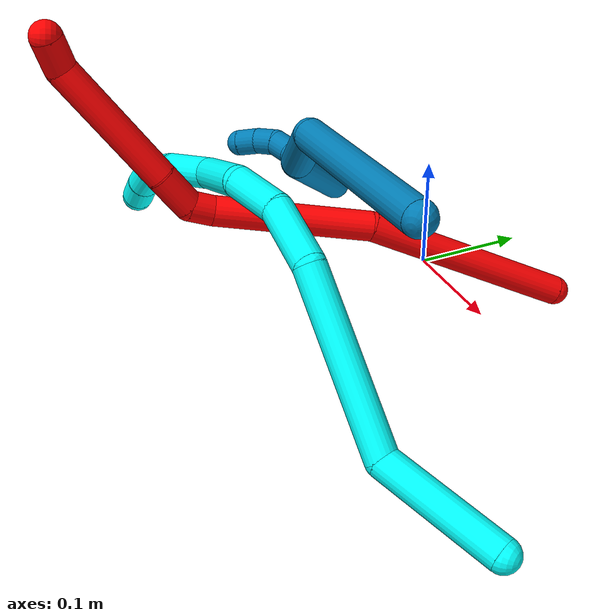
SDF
<sdf version="1.7">
 <world name="default">
  <model name="photoneo_s_sensor">
   <static>1</static>
   <pose>0 0 2 1.57079 1.57079 3.14159</pose>
   <link name="link">
    <inertial><mass>0.1</mass></inertial>
    <sensor name="sensor" type="depth">
     <update_rate>30</update_rate>
     <camera>
      <horizontal_fov>1.22</horizontal_fov>
      <image><width>1920</width><height>1200</height><format>B8G8R8</format></image>
      <clip><near>0.1</near><far>4</far></clip>
      <depth_camera><output>points</output></depth_camera>
     </camera>
     <plugin name="camera_plugin" filename="libgazebo_ros_depth_camera.so">
      <baseline>0.2</baseline>
      <alwaysOn>1</alwaysOn>
      <updateRate>0.0</updateRate>
      <cameraName>camera_ir</cameraName>
      <imageTopicName>/camera/color/image_raw</imageTopicName>
      <cameraInfoTopicName>/camera/color/camera_info</cameraInfoTopicName>
      <depthImageTopicName>/camera/depth/image_raw</depthImageTopicName>
      <depthImageCameraInfoTopicName>/camera/depth/camera_info</depthImageCameraInfoTopicName>
      <pointCloudTopicName>/camera/depth/points</pointCloudTopicName>
      <frameName>fr_optical</frameName>
      <pointCloudCutoff>0.1</pointCloudCutoff>
      <pointCloudCutoffMax>2.0</pointCloudCutoffMax>
      <distortionK1>0</distortionK1>
      <distortionK2>0</distortionK2>
      <distortionK3>0</distortionK3>
      <distortionT1>0</distortionT1>
      <distortionT2>0</distortionT2>
      <CxPrime>0</CxPrime>
      <Cx>0</Cx>
      <Cy>0</Cy>
      <focalLength>0</focalLength>
      <hackBaseline>0</hackBaseline>
     </plugin>
    </sensor>
   </link>
  </model>
  <model name="bin">
   <static>1</static>
   <link name="bottom">
    <collision name="collision-bottom">
     <pose>0 0 -0.01 0 -0 0</pose>
     <geometry><box><size>0.8 0.6 0.02</size></box></geometry>
     <surface>
      <friction><ode><mu>100</mu><mu2>100</mu2></ode></friction>
      <contact><collide_bitmask>65535</collide_bitmask></contact>
     </surface>
    </collision>
   </link>
   <link name="west_wall">
    <collision name="collision-west_wall">
     <pose>-0.41 0 0.1 0 -0 0</pose>
     <geometry><box><size>0.02 0.6 0.2</size></box></geometry>
     <surface>
      <friction><ode><mu>100</mu><mu2>100</mu2></ode></friction>
      <contact><collide_bitmask>65535</collide_bitmask></contact>
     </surface>
    </collision>
   </link>
   <link name="east_wall">
    <collision name="collision-east_wall">
     <pose>0.41 0 0.1 0 -0 0</pose>
     <geometry><box><size>0.02 0.6 0.2</size></box></geometry>
     <surface>
      <friction><ode><mu>100</mu><mu2>100</mu2></ode></friction>
      <contact><collide_bitmask>65535</collide_bitmask></contact>
     </surface>
    </collision>
   </link>
   <link name="south_wall">
    <collision name="collision-south_wall">
     <pose>0 -0.31 0.1 0 -0 0</pose>
     <geometry><box><size>0.8 0.02 0.2</size></box></geometry>
     <surface>
      <friction><ode><mu>100</mu><mu2>100</mu2></ode></friction>
      <contact><collide_bitmask>65535</collide_bitmask></contact>
     </surface>
    </collision>
   </link>
   <link name="north_wall">
    <collision name="collision-north_wall">
     <pose>0 0.31 0.1 0 -0 0</pose>
     <geometry><box><size>0.8 0.02 0.2</size></box></geometry>
     <surface>
      <friction><ode><mu>100</mu><mu2>100</mu2></ode></friction>
      <contact><collide_bitmask>65535</collide_bitmask></contact>
     </surface>
    </collision>
   </link>
  </model>
  <model name="2">
   <static>0</static>
   <link name="2">
    <collision name="collision-cylinder-e_1_1_4">
     <pose>-0.014333 -0.024493 0.085113 0.280201 -0.160437 -0.022673</pose>
     <geometry><cylinder><radius>0.0125</radius><length>0.179439</length></cylinder></geometry>
     <surface>
      <friction><ode><mu>1.16</mu><mu2>1.16</mu2><slip1>0</slip1><slip2>0</slip2></ode></friction>
      <contact><ode><kp>1e+06</kp><kd>1</kd><max_vel>0</max_vel><min_depth>0.001</min_depth></ode></contact>
     </surface>
    </collision>
    <visual name="visual-cylinder-e_1_1_4">
     <pose>-0.014333 -0.024493 0.085113 0.280201 -0.160437 -0.022673</pose>
     <geometry><cylinder><radius>0.0125</radius><length>0.179439</length></cylinder></geometry>
     <material><ambient>1 0 0 1</ambient></material>
    </visual>
    <collision name="collision-cylinder-e_2_4_5">
     <pose>-0.025159 -0.056269 0.235091 0.111807 0.053669 0.003004</pose>
     <geometry><cylinder><radius>0.0125</radius><length>0.130732</length></cylinder></geometry>
     <surface>
      <friction><ode><mu>1.16</mu><mu2>1.16</mu2><slip1>0</slip1><slip2>0</slip2></ode></friction>
      <contact><ode><kp>1e+06</kp><kd>1</kd><max_vel>0</max_vel><min_depth>0.001</min_depth></ode></contact>
     </surface>
    </collision>
    <visual name="visual-cylinder-e_2_4_5">
     <pose>-0.025159 -0.056269 0.235091 0.111807 0.053669 0.003004</pose>
     <geometry><cylinder><radius>0.0125</radius><length>0.130732</length></cylinder></geometry>
     <material><ambient>1 0 0 1</ambient></material>
    </visual>
    <collision name="collision-cylinder-e_3_5_6">
     <pose>-0.024023 -0.064759 0.30961 0.124432 -0.238934 -0.014956</pose>
     <geometry><cylinder><radius>0.0125</radius><length>0.020029</length></cylinder></geometry>
     <surface>
      <friction><ode><mu>1.16</mu><mu2>1.16</mu2><slip1>0</slip1><slip2>0</slip2></ode></friction>
      <contact><ode><kp>1e+06</kp><kd>1</kd><max_vel>0</max_vel><min_depth>0.001</min_depth></ode></contact>
     </surface>
    </collision>
    <visual name="visual-cylinder-e_3_5_6">
     <pose>-0.024023 -0.064759 0.30961 0.124432 -0.238934 -0.014956</pose>
     <geometry><cylinder><radius>0.0125</radius><length>0.020029</length></cylinder></geometry>
     <material><ambient>1 0 0 1</ambient></material>
    </visual>
    <collision name="collision-cylinder-e_4_6_7">
     <pose>-0.034705 -0.075048 0.330536 0.67818 -0.521323 -0.187606</pose>
     <geometry><cylinder><radius>0.0125</radius><length>0.033383</length></cylinder></geometry>
     <surface>
      <friction><ode><mu>1.16</mu><mu2>1.16</mu2><slip1>0</slip1><slip2>0</slip2></ode></friction>
      <contact><ode><kp>1e+06</kp><kd>1</kd><max_vel>0</max_vel><min_depth>0.001</min_depth></ode></contact>
     </surface>
    </collision>
    <visual name="visual-cylinder-e_4_6_7">
     <pose>-0.034705 -0.075048 0.330536 0.67818 -0.521323 -0.187606</pose>
     <geometry><cylinder><radius>0.0125</radius><length>0.033383</length></cylinder></geometry>
     <material><ambient>1 0 0 1</ambient></material>
    </visual>
    <collision name="collision-cylinder-e_5_7_8">
     <pose>-0.063708 -0.117643 0.378896 0.734814 -0.392433 -0.152712</pose>
     <geometry><cylinder><radius>0.0125</radius><length>0.1082</length></cylinder></geometry>
     <surface>
      <friction><ode><mu>1.16</mu><mu2>1.16</mu2><slip1>0</slip1><slip2>0</slip2></ode></friction>
      <contact><ode><kp>1e+06</kp><kd>1</kd><max_vel>0</max_vel><min_depth>0.001</min_depth></ode></contact>
     </surface>
    </collision>
    <visual name="visual-cylinder-e_5_7_8">
     <pose>-0.063708 -0.117643 0.378896 0.734814 -0.392433 -0.152712</pose>
     <geometry><cylinder><radius>0.0125</radius><length>0.1082</length></cylinder></geometry>
     <material><ambient>1 0 0 1</ambient></material>
    </visual>
    <collision name="collision-cylinder-e_6_8_2">
     <pose>-0.095397 -0.158464 0.420952 0.973735 -0.893972 -0.497011</pose>
     <geometry><cylinder><radius>0.0125</radius><length>0.028217</length></cylinder></geometry>
     <surface>
      <friction><ode><mu>1.16</mu><mu2>1.16</mu2><slip1>0</slip1><slip2>0</slip2></ode></friction>
      <contact><ode><kp>1e+06</kp><kd>1</kd><max_vel>0</max_vel><min_depth>0.001</min_depth></ode></contact>
     </surface>
    </collision>
    <visual name="visual-cylinder-e_6_8_2">
     <pose>-0.095397 -0.158464 0.420952 0.973735 -0.893972 -0.497011</pose>
     <geometry><cylinder><radius>0.0125</radius><length>0.028217</length></cylinder></geometry>
     <material><ambient>1 0 0 1</ambient></material>
    </visual>
    <collision name="collision-sphere-2">
     <pose>-0.106395 -0.165772 0.42592 0 -0 0</pose>
     <geometry><sphere><radius>0.0125</radius></sphere></geometry>
     <surface>
      <friction><ode><mu>1.16</mu><mu2>1.16</mu2><slip1>0</slip1><slip2>0</slip2></ode></friction>
      <contact><ode><kp>1e+06</kp><kd>1</kd><max_vel>0</max_vel><min_depth>0.001</min_depth></ode></contact>
     </surface>
    </collision>
    <visual name="visual-sphere-2">
     <pose>-0.106395 -0.165772 0.42592 0 -0 0</pose>
     <geometry><sphere><radius>0.0125</radius></sphere></geometry>
     <material><ambient>1 0 0 1</ambient></material>
    </visual>
    <collision name="collision-sphere-4">
     <pose>-0.028665 -0.048986 0.170227 0 -0 0</pose>
     <geometry><sphere><radius>0.0125</radius></sphere></geometry>
     <surface>
      <friction><ode><mu>1.16</mu><mu2>1.16</mu2><slip1>0</slip1><slip2>0</slip2></ode></friction>
      <contact><ode><kp>1e+06</kp><kd>1</kd><max_vel>0</max_vel><min_depth>0.001</min_depth></ode></contact>
     </surface>
    </collision>
    <visual name="visual-sphere-4">
     <pose>-0.028665 -0.048986 0.170227 0 -0 0</pose>
     <geometry><sphere><radius>0.0125</radius></sphere></geometry>
     <material><ambient>1 0 0 1</ambient></material>
    </visual>
    <collision name="collision-sphere-1">
     <geometry><sphere><radius>0.0125</radius></sphere></geometry>
     <surface>
      <friction><ode><mu>1.16</mu><mu2>1.16</mu2><slip1>0</slip1><slip2>0</slip2></ode></friction>
      <contact><ode><kp>1e+06</kp><kd>1</kd><max_vel>0</max_vel><min_depth>0.001</min_depth></ode></contact>
     </surface>
    </collision>
    <visual name="visual-sphere-1">
     <geometry><sphere><radius>0.0125</radius></sphere></geometry>
     <material><ambient>1 0 0 1</ambient></material>
    </visual>
    <collision name="collision-sphere-8">
     <pose>-0.084398 -0.151157 0.415984 0 -0 0</pose>
     <geometry><sphere><radius>0.0125</radius></sphere></geometry>
     <surface>
      <friction><ode><mu>1.16</mu><mu2>1.16</mu2><slip1>0</slip1><slip2>0</slip2></ode></friction>
      <contact><ode><kp>1e+06</kp><kd>1</kd><max_vel>0</max_vel><min_depth>0.001</min_depth></ode></contact>
     </surface>
    </collision>
    <visual name="visual-sphere-8">
     <pose>-0.084398 -0.151157 0.415984 0 -0 0</pose>
     <geometry><sphere><radius>0.0125</radius></sphere></geometry>
     <material><ambient>1 0 0 1</ambient></material>
    </visual>
    <collision name="collision-sphere-5">
     <pose>-0.021652 -0.063552 0.299955 0 -0 0</pose>
     <geometry><sphere><radius>0.0125</radius></sphere></geometry>
     <surface>
      <friction><ode><mu>1.16</mu><mu2>1.16</mu2><slip1>0</slip1><slip2>0</slip2></ode></friction>
      <contact><ode><kp>1e+06</kp><kd>1</kd><max_vel>0</max_vel><min_depth>0.001</min_depth></ode></contact>
     </surface>
    </collision>
    <visual name="visual-sphere-5">
     <pose>-0.021652 -0.063552 0.299955 0 -0 0</pose>
     <geometry><sphere><radius>0.0125</radius></sphere></geometry>
     <material><ambient>1 0 0 1</ambient></material>
    </visual>
    <collision name="collision-sphere-6">
     <pose>-0.026393 -0.065967 0.319264 0 -0 0</pose>
     <geometry><sphere><radius>0.0125</radius></sphere></geometry>
     <surface>
      <friction><ode><mu>1.16</mu><mu2>1.16</mu2><slip1>0</slip1><slip2>0</slip2></ode></friction>
      <contact><ode><kp>1e+06</kp><kd>1</kd><max_vel>0</max_vel><min_depth>0.001</min_depth></ode></contact>
     </surface>
    </collision>
    <visual name="visual-sphere-6">
     <pose>-0.026393 -0.065967 0.319264 0 -0 0</pose>
     <geometry><sphere><radius>0.0125</radius></sphere></geometry>
     <material><ambient>1 0 0 1</ambient></material>
    </visual>
    <collision name="collision-sphere-7">
     <pose>-0.043018 -0.084129 0.341807 0 -0 0</pose>
     <geometry><sphere><radius>0.0125</radius></sphere></geometry>
     <surface>
      <friction><ode><mu>1.16</mu><mu2>1.16</mu2><slip1>0</slip1><slip2>0</slip2></ode></friction>
      <contact><ode><kp>1e+06</kp><kd>1</kd><max_vel>0</max_vel><min_depth>0.001</min_depth></ode></contact>
     </surface>
    </collision>
    <visual name="visual-sphere-7">
     <pose>-0.043018 -0.084129 0.341807 0 -0 0</pose>
     <geometry><sphere><radius>0.0125</radius></sphere></geometry>
     <material><ambient>1 0 0 1</ambient></material>
    </visual>
    <inertial>
     <pose>-0.034171 -0.065508 0.232233 0 -0 0</pose>
     <mass>0.5</mass>
     <inertia>
      <ixx>0.000744</ixx>
      <ixy>0</ixy>
      <ixz>0</ixz>
      <iyy>0.000712</iyy>
      <iyz>0</iyz>
      <izz>0.000375</izz>
     </inertia>
    </inertial>
   </link>
   <pose>0.108281 0.068476 0.011496 -1.40272 0.781808 3.0295</pose>
  </model>
  <model name="3">
   <static>0</static>
   <link name="3">
    <collision name="collision-cylinder-e_1_1_4">
     <pose>-0.010593 -0.004497 -0.047782 3.04775 -0.217234 -2.32841</pose>
     <geometry><cylinder><radius>0.0125</radius><length>0.098297</length></cylinder></geometry>
     <surface>
      <friction><ode><mu>1.16</mu><mu2>1.16</mu2><slip1>0</slip1><slip2>0</slip2></ode></friction>
      <contact><ode><kp>1e+06</kp><kd>1</kd><max_vel>0</max_vel><min_depth>0.001</min_depth></ode></contact>
     </surface>
    </collision>
    <visual name="visual-cylinder-e_1_1_4">
     <pose>-0.010593 -0.004497 -0.047782 3.04775 -0.217234 -2.32841</pose>
     <geometry><cylinder><radius>0.0125</radius><length>0.098297</length></cylinder></geometry>
     <material><ambient>0.003922 1 0.996078 1</ambient></material>
    </visual>
    <collision name="collision-cylinder-e_2_4_5">
     <pose>-0.071892 -0.02963 -0.139286 2.70061 -0.809216 -2.17721</pose>
     <geometry><cylinder><radius>0.0125</radius><length>0.140121</length></cylinder></geometry>
     <surface>
      <friction><ode><mu>1.16</mu><mu2>1.16</mu2><slip1>0</slip1><slip2>0</slip2></ode></friction>
      <contact><ode><kp>1e+06</kp><kd>1</kd><max_vel>0</max_vel><min_depth>0.001</min_depth></ode></contact>
     </surface>
    </collision>
    <visual name="visual-cylinder-e_2_4_5">
     <pose>-0.071892 -0.02963 -0.139286 2.70061 -0.809216 -2.17721</pose>
     <geometry><cylinder><radius>0.0125</radius><length>0.140121</length></cylinder></geometry>
     <material><ambient>0.003922 1 0.996078 1</ambient></material>
    </visual>
    <collision name="collision-cylinder-e_3_5_6">
     <pose>-0.137624 -0.048182 -0.206108 -3.05164 -0.574841 2.8394</pose>
     <geometry><cylinder><radius>0.0125</radius><length>0.055274</length></cylinder></geometry>
     <surface>
      <friction><ode><mu>1.16</mu><mu2>1.16</mu2><slip1>0</slip1><slip2>0</slip2></ode></friction>
      <contact><ode><kp>1e+06</kp><kd>1</kd><max_vel>0</max_vel><min_depth>0.001</min_depth></ode></contact>
     </surface>
    </collision>
    <visual name="visual-cylinder-e_3_5_6">
     <pose>-0.137624 -0.048182 -0.206108 -3.05164 -0.574841 2.8394</pose>
     <geometry><cylinder><radius>0.0125</radius><length>0.055274</length></cylinder></geometry>
     <material><ambient>0.003922 1 0.996078 1</ambient></material>
    </visual>
    <collision name="collision-cylinder-e_4_6_7">
     <pose>-0.157536 -0.04578 -0.250022 -3.12632 -0.230517 3.00985</pose>
     <geometry><cylinder><radius>0.0125</radius><length>0.04276</length></cylinder></geometry>
     <surface>
      <friction><ode><mu>1.16</mu><mu2>1.16</mu2><slip1>0</slip1><slip2>0</slip2></ode></friction>
      <contact><ode><kp>1e+06</kp><kd>1</kd><max_vel>0</max_vel><min_depth>0.001</min_depth></ode></contact>
     </surface>
    </collision>
    <visual name="visual-cylinder-e_4_6_7">
     <pose>-0.157536 -0.04578 -0.250022 -3.12632 -0.230517 3.00985</pose>
     <geometry><cylinder><radius>0.0125</radius><length>0.04276</length></cylinder></geometry>
     <material><ambient>0.003922 1 0.996078 1</ambient></material>
    </visual>
    <collision name="collision-cylinder-e_5_7_8">
     <pose>-0.164787 -0.028272 -0.298971 -2.59316 -0.071633 0.253392</pose>
     <geometry><cylinder><radius>0.0125</radius><length>0.066115</length></cylinder></geometry>
     <surface>
      <friction><ode><mu>1.16</mu><mu2>1.16</mu2><slip1>0</slip1><slip2>0</slip2></ode></friction>
      <contact><ode><kp>1e+06</kp><kd>1</kd><max_vel>0</max_vel><min_depth>0.001</min_depth></ode></contact>
     </surface>
    </collision>
    <visual name="visual-cylinder-e_5_7_8">
     <pose>-0.164787 -0.028272 -0.298971 -2.59316 -0.071633 0.253392</pose>
     <geometry><cylinder><radius>0.0125</radius><length>0.066115</length></cylinder></geometry>
     <material><ambient>0.003922 1 0.996078 1</ambient></material>
    </visual>
    <collision name="collision-cylinder-e_6_8_9">
     <pose>-0.163927 -0.011719 -0.345457 3.10683 0.17392 2.74802</pose>
     <geometry><cylinder><radius>0.0125</radius><length>0.037282</length></cylinder></geometry>
     <surface>
      <friction><ode><mu>1.16</mu><mu2>1.16</mu2><slip1>0</slip1><slip2>0</slip2></ode></friction>
      <contact><ode><kp>1e+06</kp><kd>1</kd><max_vel>0</max_vel><min_depth>0.001</min_depth></ode></contact>
     </surface>
    </collision>
    <visual name="visual-cylinder-e_6_8_9">
     <pose>-0.163927 -0.011719 -0.345457 3.10683 0.17392 2.74802</pose>
     <geometry><cylinder><radius>0.0125</radius><length>0.037282</length></cylinder></geometry>
     <material><ambient>0.003922 1 0.996078 1</ambient></material>
    </visual>
    <collision name="collision-cylinder-e_7_9_10">
     <pose>-0.156824 -0.012497 -0.373025 3.12644 0.398062 3.06649</pose>
     <geometry><cylinder><radius>0.0125</radius><length>0.020003</length></cylinder></geometry>
     <surface>
      <friction><ode><mu>1.16</mu><mu2>1.16</mu2><slip1>0</slip1><slip2>0</slip2></ode></friction>
      <contact><ode><kp>1e+06</kp><kd>1</kd><max_vel>0</max_vel><min_depth>0.001</min_depth></ode></contact>
     </surface>
    </collision>
    <visual name="visual-cylinder-e_7_9_10">
     <pose>-0.156824 -0.012497 -0.373025 3.12644 0.398062 3.06649</pose>
     <geometry><cylinder><radius>0.0125</radius><length>0.020003</length></cylinder></geometry>
     <material><ambient>0.003922 1 0.996078 1</ambient></material>
    </visual>
    <collision name="collision-cylinder-e_8_10_11">
     <pose>-0.147939 -0.006876 -0.38879 -2.42001 0.521306 -1.2307</pose>
     <geometry><cylinder><radius>0.0125</radius><length>0.020112</length></cylinder></geometry>
     <surface>
      <friction><ode><mu>1.16</mu><mu2>1.16</mu2><slip1>0</slip1><slip2>0</slip2></ode></friction>
      <contact><ode><kp>1e+06</kp><kd>1</kd><max_vel>0</max_vel><min_depth>0.001</min_depth></ode></contact>
     </surface>
    </collision>
    <visual name="visual-cylinder-e_8_10_11">
     <pose>-0.147939 -0.006876 -0.38879 -2.42001 0.521306 -1.2307</pose>
     <geometry><cylinder><radius>0.0125</radius><length>0.020112</length></cylinder></geometry>
     <material><ambient>0.003922 1 0.996078 1</ambient></material>
    </visual>
    <collision name="collision-cylinder-e_9_11_2">
     <pose>-0.137959 0.005338 -0.401164 -2.30518 0.519449 -1.07777</pose>
     <geometry><cylinder><radius>0.0125</radius><length>0.020034</length></cylinder></geometry>
     <surface>
      <friction><ode><mu>1.16</mu><mu2>1.16</mu2><slip1>0</slip1><slip2>0</slip2></ode></friction>
      <contact><ode><kp>1e+06</kp><kd>1</kd><max_vel>0</max_vel><min_depth>0.001</min_depth></ode></contact>
     </surface>
    </collision>
    <visual name="visual-cylinder-e_9_11_2">
     <pose>-0.137959 0.005338 -0.401164 -2.30518 0.519449 -1.07777</pose>
     <geometry><cylinder><radius>0.0125</radius><length>0.020034</length></cylinder></geometry>
     <material><ambient>0.003922 1 0.996078 1</ambient></material>
    </visual>
    <collision name="collision-sphere-2">
     <pose>-0.132986 0.011793 -0.406992 0 -0 0</pose>
     <geometry><sphere><radius>0.0125</radius></sphere></geometry>
     <surface>
      <friction><ode><mu>1.16</mu><mu2>1.16</mu2><slip1>0</slip1><slip2>0</slip2></ode></friction>
      <contact><ode><kp>1e+06</kp><kd>1</kd><max_vel>0</max_vel><min_depth>0.001</min_depth></ode></contact>
     </surface>
    </collision>
    <visual name="visual-sphere-2">
     <pose>-0.132986 0.011793 -0.406992 0 -0 0</pose>
     <geometry><sphere><radius>0.0125</radius></sphere></geometry>
     <material><ambient>0.003922 1 0.996078 1</ambient></material>
    </visual>
    <collision name="collision-sphere-11">
     <pose>-0.142931 -0.001116 -0.395337 0 -0 0</pose>
     <geometry><sphere><radius>0.0125</radius></sphere></geometry>
     <surface>
      <friction><ode><mu>1.16</mu><mu2>1.16</mu2><slip1>0</slip1><slip2>0</slip2></ode></friction>
      <contact><ode><kp>1e+06</kp><kd>1</kd><max_vel>0</max_vel><min_depth>0.001</min_depth></ode></contact>
     </surface>
    </collision>
    <visual name="visual-sphere-11">
     <pose>-0.142931 -0.001116 -0.395337 0 -0 0</pose>
     <geometry><sphere><radius>0.0125</radius></sphere></geometry>
     <material><ambient>0.003922 1 0.996078 1</ambient></material>
    </visual>
    <collision name="collision-sphere-10">
     <pose>-0.152947 -0.012637 -0.382243 0 -0 0</pose>
     <geometry><sphere><radius>0.0125</radius></sphere></geometry>
     <surface>
      <friction><ode><mu>1.16</mu><mu2>1.16</mu2><slip1>0</slip1><slip2>0</slip2></ode></friction>
      <contact><ode><kp>1e+06</kp><kd>1</kd><max_vel>0</max_vel><min_depth>0.001</min_depth></ode></contact>
     </surface>
    </collision>
    <visual name="visual-sphere-10">
     <pose>-0.152947 -0.012637 -0.382243 0 -0 0</pose>
     <geometry><sphere><radius>0.0125</radius></sphere></geometry>
     <material><ambient>0.003922 1 0.996078 1</ambient></material>
    </visual>
    <collision name="collision-sphere-9">
     <pose>-0.160701 -0.012357 -0.363806 0 -0 0</pose>
     <geometry><sphere><radius>0.0125</radius></sphere></geometry>
     <surface>
      <friction><ode><mu>1.16</mu><mu2>1.16</mu2><slip1>0</slip1><slip2>0</slip2></ode></friction>
      <contact><ode><kp>1e+06</kp><kd>1</kd><max_vel>0</max_vel><min_depth>0.001</min_depth></ode></contact>
     </surface>
    </collision>
    <visual name="visual-sphere-9">
     <pose>-0.160701 -0.012357 -0.363806 0 -0 0</pose>
     <geometry><sphere><radius>0.0125</radius></sphere></geometry>
     <material><ambient>0.003922 1 0.996078 1</ambient></material>
    </visual>
    <collision name="collision-sphere-4">
     <pose>-0.021186 -0.008994 -0.095565 0 -0 0</pose>
     <geometry><sphere><radius>0.0125</radius></sphere></geometry>
     <surface>
      <friction><ode><mu>1.16</mu><mu2>1.16</mu2><slip1>0</slip1><slip2>0</slip2></ode></friction>
      <contact><ode><kp>1e+06</kp><kd>1</kd><max_vel>0</max_vel><min_depth>0.001</min_depth></ode></contact>
     </surface>
    </collision>
    <visual name="visual-sphere-4">
     <pose>-0.021186 -0.008994 -0.095565 0 -0 0</pose>
     <geometry><sphere><radius>0.0125</radius></sphere></geometry>
     <material><ambient>0.003922 1 0.996078 1</ambient></material>
    </visual>
    <collision name="collision-sphere-1">
     <geometry><sphere><radius>0.0125</radius></sphere></geometry>
     <surface>
      <friction><ode><mu>1.16</mu><mu2>1.16</mu2><slip1>0</slip1><slip2>0</slip2></ode></friction>
      <contact><ode><kp>1e+06</kp><kd>1</kd><max_vel>0</max_vel><min_depth>0.001</min_depth></ode></contact>
     </surface>
    </collision>
    <visual name="visual-sphere-1">
     <geometry><sphere><radius>0.0125</radius></sphere></geometry>
     <material><ambient>0.003922 1 0.996078 1</ambient></material>
    </visual>
    <collision name="collision-sphere-8">
     <pose>-0.167153 -0.011081 -0.327108 0 -0 0</pose>
     <geometry><sphere><radius>0.0125</radius></sphere></geometry>
     <surface>
      <friction><ode><mu>1.16</mu><mu2>1.16</mu2><slip1>0</slip1><slip2>0</slip2></ode></friction>
      <contact><ode><kp>1e+06</kp><kd>1</kd><max_vel>0</max_vel><min_depth>0.001</min_depth></ode></contact>
     </surface>
    </collision>
    <visual name="visual-sphere-8">
     <pose>-0.167153 -0.011081 -0.327108 0 -0 0</pose>
     <geometry><sphere><radius>0.0125</radius></sphere></geometry>
     <material><ambient>0.003922 1 0.996078 1</ambient></material>
    </visual>
    <collision name="collision-sphere-5">
     <pose>-0.122598 -0.050266 -0.183007 0 -0 0</pose>
     <geometry><sphere><radius>0.0125</radius></sphere></geometry>
     <surface>
      <friction><ode><mu>1.16</mu><mu2>1.16</mu2><slip1>0</slip1><slip2>0</slip2></ode></friction>
      <contact><ode><kp>1e+06</kp><kd>1</kd><max_vel>0</max_vel><min_depth>0.001</min_depth></ode></contact>
     </surface>
    </collision>
    <visual name="visual-sphere-5">
     <pose>-0.122598 -0.050266 -0.183007 0 -0 0</pose>
     <geometry><sphere><radius>0.0125</radius></sphere></geometry>
     <material><ambient>0.003922 1 0.996078 1</ambient></material>
    </visual>
    <collision name="collision-sphere-6">
     <pose>-0.152651 -0.046098 -0.22921 0 -0 0</pose>
     <geometry><sphere><radius>0.0125</radius></sphere></geometry>
     <surface>
      <friction><ode><mu>1.16</mu><mu2>1.16</mu2><slip1>0</slip1><slip2>0</slip2></ode></friction>
      <contact><ode><kp>1e+06</kp><kd>1</kd><max_vel>0</max_vel><min_depth>0.001</min_depth></ode></contact>
     </surface>
    </collision>
    <visual name="visual-sphere-6">
     <pose>-0.152651 -0.046098 -0.22921 0 -0 0</pose>
     <geometry><sphere><radius>0.0125</radius></sphere></geometry>
     <material><ambient>0.003922 1 0.996078 1</ambient></material>
    </visual>
    <collision name="collision-sphere-7">
     <pose>-0.162421 -0.045462 -0.270834 0 -0 0</pose>
     <geometry><sphere><radius>0.0125</radius></sphere></geometry>
     <surface>
      <friction><ode><mu>1.16</mu><mu2>1.16</mu2><slip1>0</slip1><slip2>0</slip2></ode></friction>
      <contact><ode><kp>1e+06</kp><kd>1</kd><max_vel>0</max_vel><min_depth>0.001</min_depth></ode></contact>
     </surface>
    </collision>
    <visual name="visual-sphere-7">
     <pose>-0.162421 -0.045462 -0.270834 0 -0 0</pose>
     <geometry><sphere><radius>0.0125</radius></sphere></geometry>
     <material><ambient>0.003922 1 0.996078 1</ambient></material>
    </visual>
    <inertial>
     <pose>-0.102682 -0.023604 -0.204523 0 -0 0</pose>
     <mass>0.5</mass>
     <inertia>
      <ixx>-0.000339</ixx>
      <ixy>0</ixy>
      <ixz>0</ixz>
      <iyy>6.8e-05</iyy>
      <iyz>0</iyz>
      <izz>0.000226</izz>
     </inertia>
    </inertial>
   </link>
   <pose>0.3457 -0.141904 0.011491 -1.54778 0.826244 -1.05764</pose>
  </model>
  <model name="9">
   <static>0</static>
   <link name="9">
    <collision name="collision-cylinder-e_1_1_4">
     <pose>-0.044723 0.037474 0.043358 -0.712725 -0.662677 0.254741</pose>
     <geometry><cylinder><radius>0.0125</radius><length>0.145388</length></cylinder></geometry>
     <surface>
      <friction><ode><mu>1.16</mu><mu2>1.16</mu2><slip1>0</slip1><slip2>0</slip2></ode></friction>
      <contact><ode><kp>1e+06</kp><kd>1</kd><max_vel>0</max_vel><min_depth>0.001</min_depth></ode></contact>
     </surface>
    </collision>
    <visual name="visual-cylinder-e_1_1_4">
     <pose>-0.044723 0.037474 0.043358 -0.712725 -0.662677 0.254741</pose>
     <geometry><cylinder><radius>0.0125</radius><length>0.145388</length></cylinder></geometry>
     <material><ambient>0 0.490196 0.709804 1</ambient></material>
    </visual>
    <collision name="collision-cylinder-e_2_4_5">
     <pose>-0.089119 0.10107 0.101325 -1.06091 0.010956 -0.006426</pose>
     <geometry><cylinder><radius>0.0125</radius><length>0.059862</length></cylinder></geometry>
     <surface>
      <friction><ode><mu>1.16</mu><mu2>1.16</mu2><slip1>0</slip1><slip2>0</slip2></ode></friction>
      <contact><ode><kp>1e+06</kp><kd>1</kd><max_vel>0</max_vel><min_depth>0.001</min_depth></ode></contact>
     </surface>
    </collision>
    <visual name="visual-cylinder-e_2_4_5">
     <pose>-0.089119 0.10107 0.101325 -1.06091 0.010956 -0.006426</pose>
     <geometry><cylinder><radius>0.0125</radius><length>0.059862</length></cylinder></geometry>
     <material><ambient>0 0.490196 0.709804 1</ambient></material>
    </visual>
    <collision name="collision-cylinder-e_3_5_6">
     <pose>-0.07436 0.166996 0.166435 -0.667478 0.220763 -0.076815</pose>
     <geometry><cylinder><radius>0.0125</radius><length>0.131805</length></cylinder></geometry>
     <surface>
      <friction><ode><mu>1.16</mu><mu2>1.16</mu2><slip1>0</slip1><slip2>0</slip2></ode></friction>
      <contact><ode><kp>1e+06</kp><kd>1</kd><max_vel>0</max_vel><min_depth>0.001</min_depth></ode></contact>
     </surface>
    </collision>
    <visual name="visual-cylinder-e_3_5_6">
     <pose>-0.07436 0.166996 0.166435 -0.667478 0.220763 -0.076815</pose>
     <geometry><cylinder><radius>0.0125</radius><length>0.131805</length></cylinder></geometry>
     <material><ambient>0 0.490196 0.709804 1</ambient></material>
    </visual>
    <collision name="collision-cylinder-e_4_6_7">
     <pose>-0.068102 0.21985 0.230461 -0.767615 -0.41023 0.167634</pose>
     <geometry><cylinder><radius>0.0125</radius><length>0.040986</length></cylinder></geometry>
     <surface>
      <friction><ode><mu>1.16</mu><mu2>1.16</mu2><slip1>0</slip1><slip2>0</slip2></ode></friction>
      <contact><ode><kp>1e+06</kp><kd>1</kd><max_vel>0</max_vel><min_depth>0.001</min_depth></ode></contact>
     </surface>
    </collision>
    <visual name="visual-cylinder-e_4_6_7">
     <pose>-0.068102 0.21985 0.230461 -0.767615 -0.41023 0.167634</pose>
     <geometry><cylinder><radius>0.0125</radius><length>0.040986</length></cylinder></geometry>
     <material><ambient>0 0.490196 0.709804 1</ambient></material>
    </visual>
    <collision name="collision-cylinder-e_5_7_8">
     <pose>-0.081636 0.239285 0.250852 -0.748909 -0.51931 0.208047</pose>
     <geometry><cylinder><radius>0.0125</radius><length>0.021604</length></cylinder></geometry>
     <surface>
      <friction><ode><mu>1.16</mu><mu2>1.16</mu2><slip1>0</slip1><slip2>0</slip2></ode></friction>
      <contact><ode><kp>1e+06</kp><kd>1</kd><max_vel>0</max_vel><min_depth>0.001</min_depth></ode></contact>
     </surface>
    </collision>
    <visual name="visual-cylinder-e_5_7_8">
     <pose>-0.081636 0.239285 0.250852 -0.748909 -0.51931 0.208047</pose>
     <geometry><cylinder><radius>0.0125</radius><length>0.021604</length></cylinder></geometry>
     <material><ambient>0 0.490196 0.709804 1</ambient></material>
    </visual>
    <collision name="collision-cylinder-e_6_8_9">
     <pose>-0.093485 0.251191 0.262972 -0.810521 -0.705362 0.313224</pose>
     <geometry><cylinder><radius>0.0125</radius><length>0.020016</length></cylinder></geometry>
     <surface>
      <friction><ode><mu>1.16</mu><mu2>1.16</mu2><slip1>0</slip1><slip2>0</slip2></ode></friction>
      <contact><ode><kp>1e+06</kp><kd>1</kd><max_vel>0</max_vel><min_depth>0.001</min_depth></ode></contact>
     </surface>
    </collision>
    <visual name="visual-cylinder-e_6_8_9">
     <pose>-0.093485 0.251191 0.262972 -0.810521 -0.705362 0.313224</pose>
     <geometry><cylinder><radius>0.0125</radius><length>0.020016</length></cylinder></geometry>
     <material><ambient>0 0.490196 0.709804 1</ambient></material>
    </visual>
    <collision name="collision-cylinder-e_7_9_10">
     <pose>-0.107624 0.260577 0.273682 -0.615904 -0.852392 0.286841</pose>
     <geometry><cylinder><radius>0.0125</radius><length>0.020323</length></cylinder></geometry>
     <surface>
      <friction><ode><mu>1.16</mu><mu2>1.16</mu2><slip1>0</slip1><slip2>0</slip2></ode></friction>
      <contact><ode><kp>1e+06</kp><kd>1</kd><max_vel>0</max_vel><min_depth>0.001</min_depth></ode></contact>
     </surface>
    </collision>
    <visual name="visual-cylinder-e_7_9_10">
     <pose>-0.107624 0.260577 0.273682 -0.615904 -0.852392 0.286841</pose>
     <geometry><cylinder><radius>0.0125</radius><length>0.020323</length></cylinder></geometry>
     <material><ambient>0 0.490196 0.709804 1</ambient></material>
    </visual>
    <collision name="collision-cylinder-e_8_10_11">
     <pose>-0.124181 0.268074 0.281877 -0.925392 -1.09874 0.59279</pose>
     <geometry><cylinder><radius>0.0125</radius><length>0.020002</length></cylinder></geometry>
     <surface>
      <friction><ode><mu>1.16</mu><mu2>1.16</mu2><slip1>0</slip1><slip2>0</slip2></ode></friction>
      <contact><ode><kp>1e+06</kp><kd>1</kd><max_vel>0</max_vel><min_depth>0.001</min_depth></ode></contact>
     </surface>
    </collision>
    <visual name="visual-cylinder-e_8_10_11">
     <pose>-0.124181 0.268074 0.281877 -0.925392 -1.09874 0.59279</pose>
     <geometry><cylinder><radius>0.0125</radius><length>0.020002</length></cylinder></geometry>
     <material><ambient>0 0.490196 0.709804 1</ambient></material>
    </visual>
    <collision name="collision-cylinder-e_9_11_12">
     <pose>-0.140669 0.278238 0.284681 -1.56025 -0.859581 0.851615</pose>
     <geometry><cylinder><radius>0.0125</radius><length>0.020013</length></cylinder></geometry>
     <surface>
      <friction><ode><mu>1.16</mu><mu2>1.16</mu2><slip1>0</slip1><slip2>0</slip2></ode></friction>
      <contact><ode><kp>1e+06</kp><kd>1</kd><max_vel>0</max_vel><min_depth>0.001</min_depth></ode></contact>
     </surface>
    </collision>
    <visual name="visual-cylinder-e_9_11_12">
     <pose>-0.140669 0.278238 0.284681 -1.56025 -0.859581 0.851615</pose>
     <geometry><cylinder><radius>0.0125</radius><length>0.020013</length></cylinder></geometry>
     <material><ambient>0 0.490196 0.709804 1</ambient></material>
    </visual>
    <collision name="collision-cylinder-e_10_12_2">
     <pose>-0.155111 0.291797 0.282867 -1.83266 -0.756071 0.955249</pose>
     <geometry><cylinder><radius>0.0125</radius><length>0.02</length></cylinder></geometry>
     <surface>
      <friction><ode><mu>1.16</mu><mu2>1.16</mu2><slip1>0</slip1><slip2>0</slip2></ode></friction>
      <contact><ode><kp>1e+06</kp><kd>1</kd><max_vel>0</max_vel><min_depth>0.001</min_depth></ode></contact>
     </surface>
    </collision>
    <visual name="visual-cylinder-e_10_12_2">
     <pose>-0.155111 0.291797 0.282867 -1.83266 -0.756071 0.955249</pose>
     <geometry><cylinder><radius>0.0125</radius><length>0.02</length></cylinder></geometry>
     <material><ambient>0 0.490196 0.709804 1</ambient></material>
    </visual>
    <collision name="collision-sphere-2">
     <pose>-0.161971 0.298824 0.280983 0 -0 0</pose>
     <geometry><sphere><radius>0.0125</radius></sphere></geometry>
     <surface>
      <friction><ode><mu>1.16</mu><mu2>1.16</mu2><slip1>0</slip1><slip2>0</slip2></ode></friction>
      <contact><ode><kp>1e+06</kp><kd>1</kd><max_vel>0</max_vel><min_depth>0.001</min_depth></ode></contact>
     </surface>
    </collision>
    <visual name="visual-sphere-2">
     <pose>-0.161971 0.298824 0.280983 0 -0 0</pose>
     <geometry><sphere><radius>0.0125</radius></sphere></geometry>
     <material><ambient>0 0.490196 0.709804 1</ambient></material>
    </visual>
    <collision name="collision-sphere-12">
     <pose>-0.14825 0.284769 0.28475 0 -0 0</pose>
     <geometry><sphere><radius>0.0125</radius></sphere></geometry>
     <surface>
      <friction><ode><mu>1.16</mu><mu2>1.16</mu2><slip1>0</slip1><slip2>0</slip2></ode></friction>
      <contact><ode><kp>1e+06</kp><kd>1</kd><max_vel>0</max_vel><min_depth>0.001</min_depth></ode></contact>
     </surface>
    </collision>
    <visual name="visual-sphere-12">
     <pose>-0.14825 0.284769 0.28475 0 -0 0</pose>
     <geometry><sphere><radius>0.0125</radius></sphere></geometry>
     <material><ambient>0 0.490196 0.709804 1</ambient></material>
    </visual>
    <collision name="collision-sphere-11">
     <pose>-0.133089 0.271707 0.284612 0 -0 0</pose>
     <geometry><sphere><radius>0.0125</radius></sphere></geometry>
     <surface>
      <friction><ode><mu>1.16</mu><mu2>1.16</mu2><slip1>0</slip1><slip2>0</slip2></ode></friction>
      <contact><ode><kp>1e+06</kp><kd>1</kd><max_vel>0</max_vel><min_depth>0.001</min_depth></ode></contact>
     </surface>
    </collision>
    <visual name="visual-sphere-11">
     <pose>-0.133089 0.271707 0.284612 0 -0 0</pose>
     <geometry><sphere><radius>0.0125</radius></sphere></geometry>
     <material><ambient>0 0.490196 0.709804 1</ambient></material>
    </visual>
    <collision name="collision-sphere-10">
     <pose>-0.115274 0.264441 0.279141 0 -0 0</pose>
     <geometry><sphere><radius>0.0125</radius></sphere></geometry>
     <surface>
      <friction><ode><mu>1.16</mu><mu2>1.16</mu2><slip1>0</slip1><slip2>0</slip2></ode></friction>
      <contact><ode><kp>1e+06</kp><kd>1</kd><max_vel>0</max_vel><min_depth>0.001</min_depth></ode></contact>
     </surface>
    </collision>
    <visual name="visual-sphere-10">
     <pose>-0.115274 0.264441 0.279141 0 -0 0</pose>
     <geometry><sphere><radius>0.0125</radius></sphere></geometry>
     <material><ambient>0 0.490196 0.709804 1</ambient></material>
    </visual>
    <collision name="collision-sphere-9">
     <pose>-0.099974 0.256713 0.268223 0 -0 0</pose>
     <geometry><sphere><radius>0.0125</radius></sphere></geometry>
     <surface>
      <friction><ode><mu>1.16</mu><mu2>1.16</mu2><slip1>0</slip1><slip2>0</slip2></ode></friction>
      <contact><ode><kp>1e+06</kp><kd>1</kd><max_vel>0</max_vel><min_depth>0.001</min_depth></ode></contact>
     </surface>
    </collision>
    <visual name="visual-sphere-9">
     <pose>-0.099974 0.256713 0.268223 0 -0 0</pose>
     <geometry><sphere><radius>0.0125</radius></sphere></geometry>
     <material><ambient>0 0.490196 0.709804 1</ambient></material>
    </visual>
    <collision name="collision-sphere-4">
     <pose>-0.089447 0.074947 0.086717 0 -0 0</pose>
     <geometry><sphere><radius>0.0125</radius></sphere></geometry>
     <surface>
      <friction><ode><mu>1.16</mu><mu2>1.16</mu2><slip1>0</slip1><slip2>0</slip2></ode></friction>
      <contact><ode><kp>1e+06</kp><kd>1</kd><max_vel>0</max_vel><min_depth>0.001</min_depth></ode></contact>
     </surface>
    </collision>
    <visual name="visual-sphere-4">
     <pose>-0.089447 0.074947 0.086717 0 -0 0</pose>
     <geometry><sphere><radius>0.0125</radius></sphere></geometry>
     <material><ambient>0 0.490196 0.709804 1</ambient></material>
    </visual>
    <collision name="collision-sphere-1">
     <geometry><sphere><radius>0.0125</radius></sphere></geometry>
     <surface>
      <friction><ode><mu>1.16</mu><mu2>1.16</mu2><slip1>0</slip1><slip2>0</slip2></ode></friction>
      <contact><ode><kp>1e+06</kp><kd>1</kd><max_vel>0</max_vel><min_depth>0.001</min_depth></ode></contact>
     </surface>
    </collision>
    <visual name="visual-sphere-1">
     <geometry><sphere><radius>0.0125</radius></sphere></geometry>
     <material><ambient>0 0.490196 0.709804 1</ambient></material>
    </visual>
    <collision name="collision-sphere-8">
     <pose>-0.086997 0.24567 0.257721 0 -0 0</pose>
     <geometry><sphere><radius>0.0125</radius></sphere></geometry>
     <surface>
      <friction><ode><mu>1.16</mu><mu2>1.16</mu2><slip1>0</slip1><slip2>0</slip2></ode></friction>
      <contact><ode><kp>1e+06</kp><kd>1</kd><max_vel>0</max_vel><min_depth>0.001</min_depth></ode></contact>
     </surface>
    </collision>
    <visual name="visual-sphere-8">
     <pose>-0.086997 0.24567 0.257721 0 -0 0</pose>
     <geometry><sphere><radius>0.0125</radius></sphere></geometry>
     <material><ambient>0 0.490196 0.709804 1</ambient></material>
    </visual>
    <collision name="collision-sphere-5">
     <pose>-0.088791 0.127192 0.115933 0 -0 0</pose>
     <geometry><sphere><radius>0.0125</radius></sphere></geometry>
     <surface>
      <friction><ode><mu>1.16</mu><mu2>1.16</mu2><slip1>0</slip1><slip2>0</slip2></ode></friction>
      <contact><ode><kp>1e+06</kp><kd>1</kd><max_vel>0</max_vel><min_depth>0.001</min_depth></ode></contact>
     </surface>
    </collision>
    <visual name="visual-sphere-5">
     <pose>-0.088791 0.127192 0.115933 0 -0 0</pose>
     <geometry><sphere><radius>0.0125</radius></sphere></geometry>
     <material><ambient>0 0.490196 0.709804 1</ambient></material>
    </visual>
    <collision name="collision-sphere-6">
     <pose>-0.059929 0.2068 0.216938 0 -0 0</pose>
     <geometry><sphere><radius>0.0125</radius></sphere></geometry>
     <surface>
      <friction><ode><mu>1.16</mu><mu2>1.16</mu2><slip1>0</slip1><slip2>0</slip2></ode></friction>
      <contact><ode><kp>1e+06</kp><kd>1</kd><max_vel>0</max_vel><min_depth>0.001</min_depth></ode></contact>
     </surface>
    </collision>
    <visual name="visual-sphere-6">
     <pose>-0.059929 0.2068 0.216938 0 -0 0</pose>
     <geometry><sphere><radius>0.0125</radius></sphere></geometry>
     <material><ambient>0 0.490196 0.709804 1</ambient></material>
    </visual>
    <collision name="collision-sphere-7">
     <pose>-0.076275 0.2329 0.243983 0 -0 0</pose>
     <geometry><sphere><radius>0.0125</radius></sphere></geometry>
     <surface>
      <friction><ode><mu>1.16</mu><mu2>1.16</mu2><slip1>0</slip1><slip2>0</slip2></ode></friction>
      <contact><ode><kp>1e+06</kp><kd>1</kd><max_vel>0</max_vel><min_depth>0.001</min_depth></ode></contact>
     </surface>
    </collision>
    <visual name="visual-sphere-7">
     <pose>-0.076275 0.2329 0.243983 0 -0 0</pose>
     <geometry><sphere><radius>0.0125</radius></sphere></geometry>
     <material><ambient>0 0.490196 0.709804 1</ambient></material>
    </visual>
    <inertial>
     <pose>-0.077306 0.149559 0.15398 0 -0 0</pose>
     <mass>0.5</mass>
     <inertia>
      <ixx>0.000451</ixx>
      <ixy>0</ixy>
      <ixz>0</ixz>
      <iyy>0.00046</iyy>
      <iyz>0</iyz>
      <izz>-0.000131</izz>
     </inertia>
    </inertial>
   </link>
   <pose>0.245575 -0.155985 0.203429 -1.45507 0.581675 0.74243</pose>
  </model>
 </world>
</sdf>
